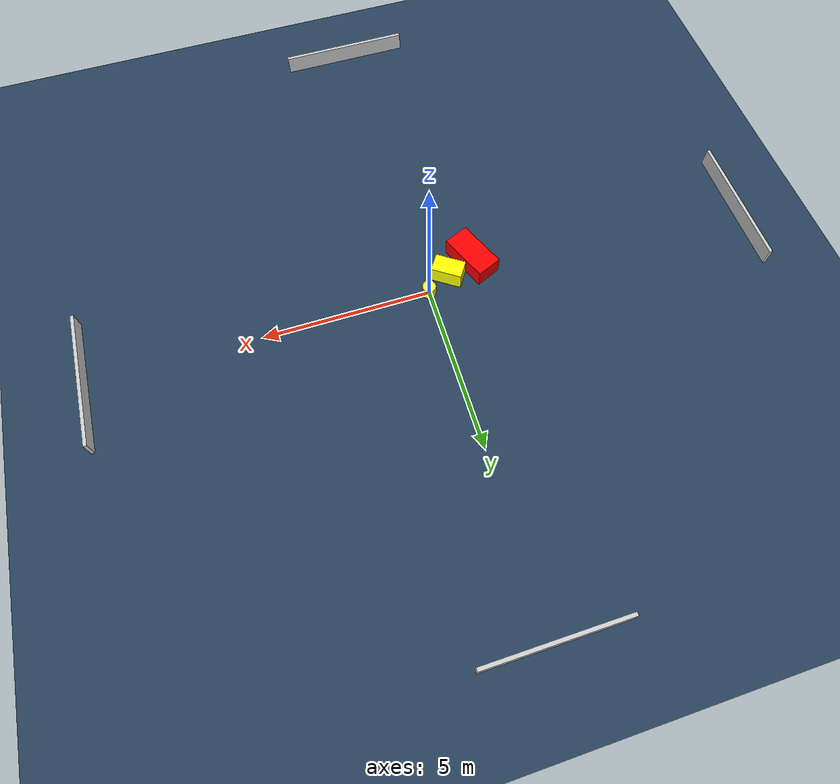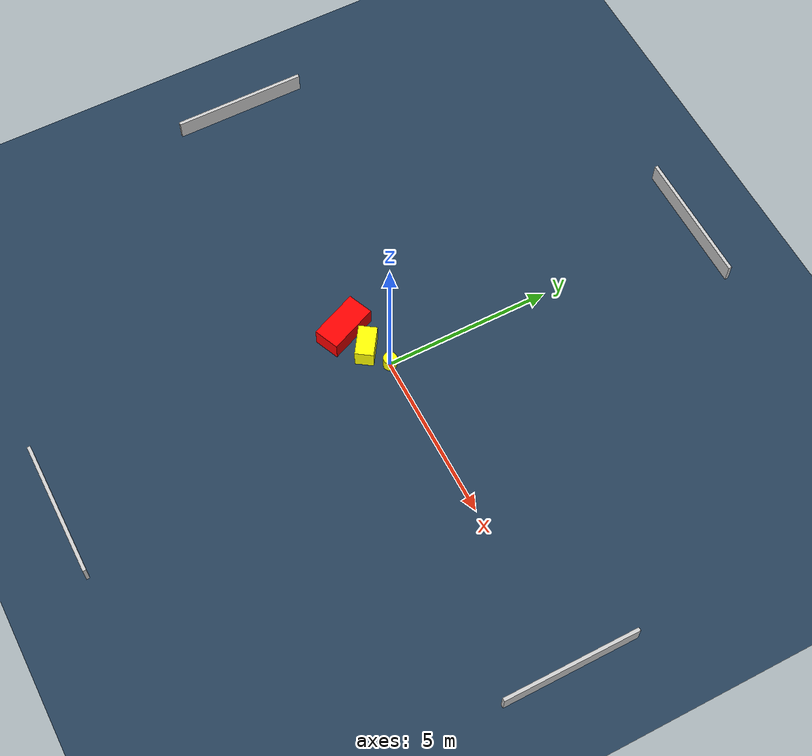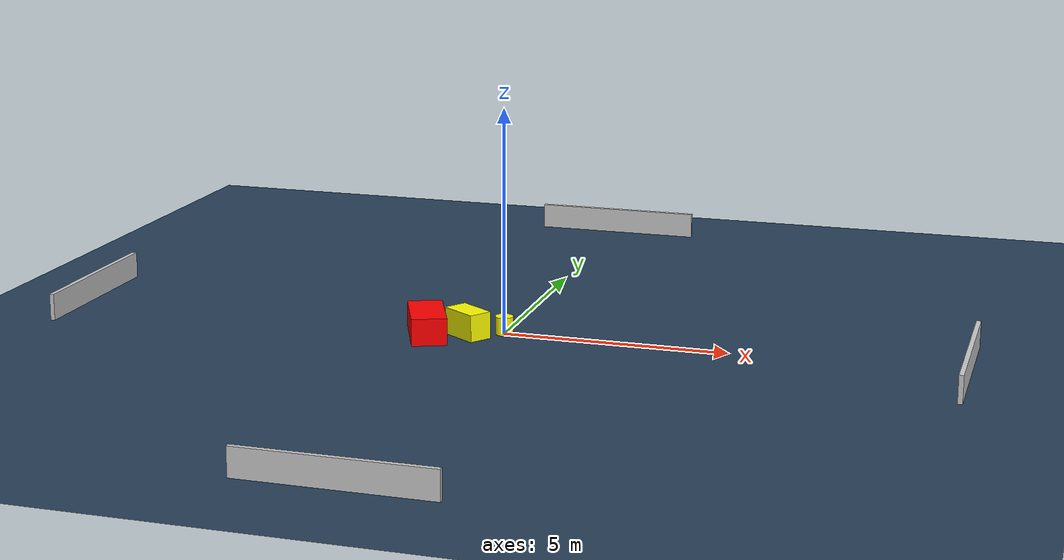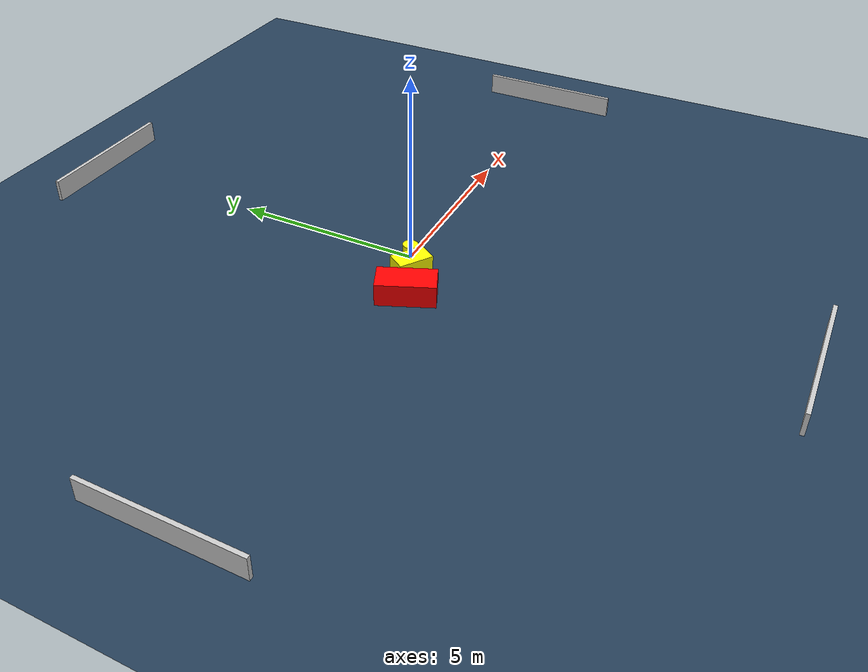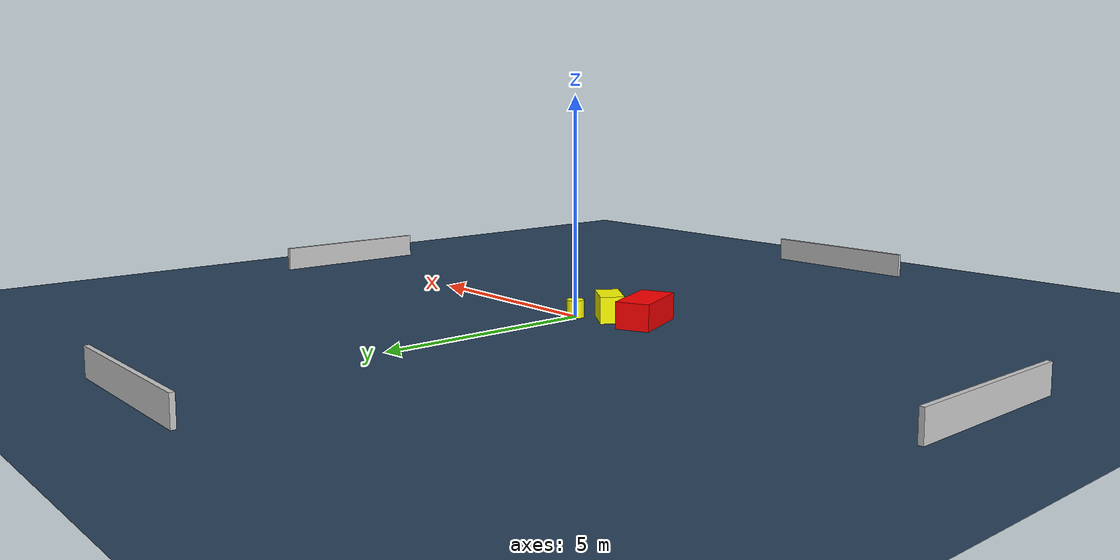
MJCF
<?xml version="1.0" ?>
<mujoco model="generated_environment">
  <option timestep="0.01" integrator="RK4" cone="elliptic"/>
  <default>
    <geom density="1"/>
  </default>
  <asset>
    <texture builtin="gradient" height="3072" name="skybox" rgb1="0.3 0.5 0.7" rgb2="0 0 0" type="skybox" width="512"/>
    <texture builtin="checker" height="300" name="groundplane" rgb1="0.2 0.3 0.4" rgb2="0.1 0.2 0.3" type="2d" width="300"/>
    <material name="groundplane" reflectance="0.2" texrepeat="5 5" texture="groundplane"/>
  </asset>
  <worldbody>
    <light dir="0 0 -1" directional="true" pos="0 0 1.5"/>
    <geom condim="3" friction="0.5 0.005 0.001" material="groundplane" name="floor" pos="0 0 0" size="0 0 0.05" type="plane"/>
    <body name="walls">
      <geom name="wall_1" condim="4" pos="-10.0 0.0 0.3" rgba="0.800000011920929 0.800000011920929 0.800000011920929 1.0" size="0.05 2.0 0.3" type="box"/>
      <geom name="wall_2" condim="4" pos="10.0 0.0 0.3" rgba="0.800000011920929 0.800000011920929 0.800000011920929 1.0" size="0.05 2.0 0.3" type="box"/>
      <geom name="wall_3" condim="4" pos="0.0 -10.0 0.3" rgba="0.800000011920929 0.800000011920929 0.800000011920929 1.0" size="2.0 0.05 0.3" type="box"/>
      <geom name="wall_4" condim="4" pos="0.0 10.0 0.3" rgba="0.800000011920929 0.800000011920929 0.800000011920929 1.0" size="2.0 0.05 0.3" type="box"/>
    </body>
    <body name="robot">
      <joint name="joint_x" type="slide" pos="0 0 0" axis="1 0 0"/>
      <joint name="joint_y" type="slide" pos="0 0 0" axis="0 1 0"/>
      <geom name="robot" type="cylinder" pos="0.0 0.0 0.2" size="0.2 0.2 0.0" mass="5.0" friction="1.0 0.005 0.0001" condim="4" rgba="1.0 1.0 0.0 1.0"/>
    </body>
    <body name="obstacle_1_movable">
      <geom name="obstacle_1_movable" condim="4" pos="-0.7117704382743163 -0.39117323110412305 0.3" euler="0 0 55.823346022348694" friction="0.0 0.005 0.001" rgba="1.0 1.0 0.0 1.0" size="0.27188556403065733 0.45641457648344747 0.3" type="box" mass="0.1"/>
      <joint type="free"/>
    </body>
    <body name="obstacle_2_static">
      <geom name="obstacle_2_static" condim="4" pos="-1.5551824308067794 -0.6797004891785311 0.3" euler="0 0 113.03514302272944" friction="0.0 0.005 0.001" rgba="1.0 0.0 0.0 1.0" size="0.7519948131628391 0.3857207737608673 0.3" type="box"/>
    </body>
  </worldbody>
  <actuator>
    <motor name="actuator_x" joint="joint_x" gear="1" ctrlrange="-1 1"/>
    <motor name="actuator_y" joint="joint_y" gear="1" ctrlrange="-1 1"/>
  </actuator>
</mujoco>
